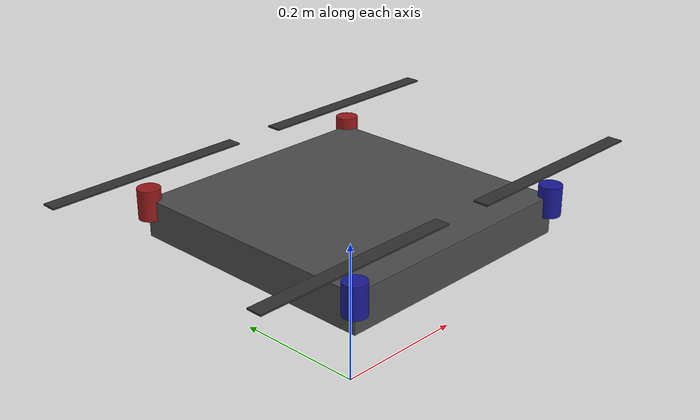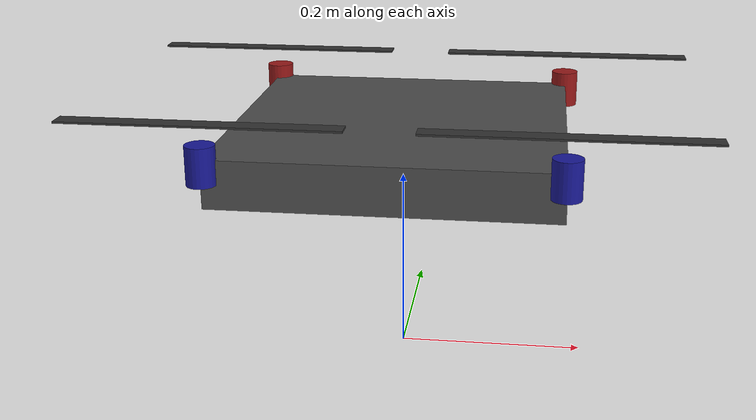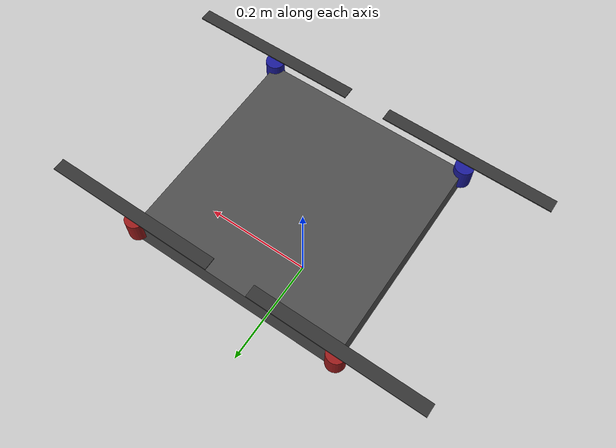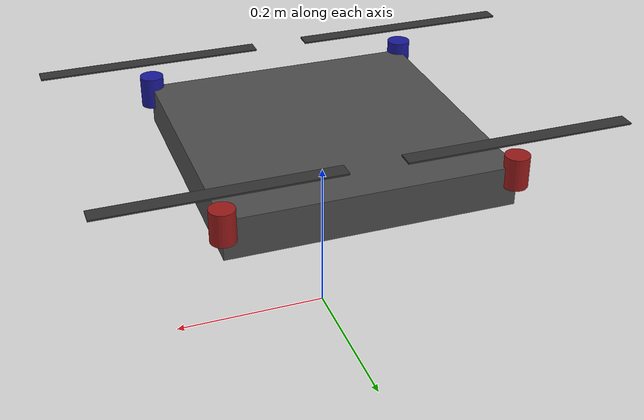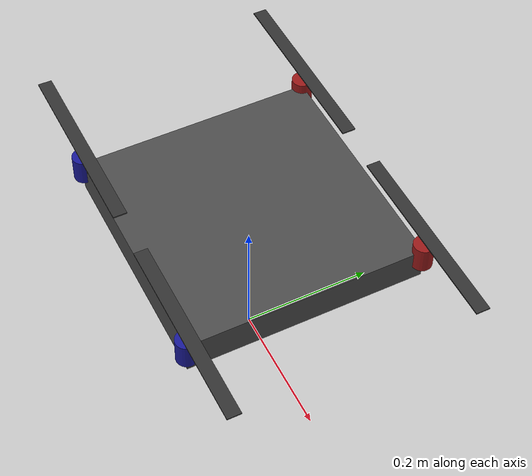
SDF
<?xml version="1.0" encoding="UTF-8"?>
<sdf version='1.9'>
  <model name='x500_lite'>
    <pose>0 0 .24 0 0 0</pose>
    <self_collide>false</self_collide>
    <static>false</static>

    <link name="base_link">
      <inertial>
        <mass>2.0</mass>
        <inertia>
          <ixx>0.02166666666666667</ixx>
          <ixy>0</ixy>
          <ixz>0</ixz>
          <iyy>0.02166666666666667</iyy>
          <iyz>0</iyz>
          <izz>0.04000000000000001</izz>
        </inertia>
      </inertial>
      <gravity>true</gravity>

      <!-- 简化外观：用 box 代替 22MB mesh -->
      <visual name="body_visual">
        <pose>0 0 0 0 0 0</pose>
        <geometry>
          <box><size>0.35 0.35 0.05</size></box>
        </geometry>
        <material>
          <ambient>0.2 0.2 0.2 1</ambient>
          <diffuse>0.3 0.3 0.3 1</diffuse>
        </material>
      </visual>
      <!-- 4 个电机座（小圆柱） -->
      <visual name="motor_mount_0">
        <pose>0.174 0.174 0.02 0 0 0</pose>
        <geometry><cylinder><radius>0.015</radius><length>0.04</length></cylinder></geometry>
        <material><ambient>0.5 0.1 0.1 1</ambient><diffuse>0.6 0.1 0.1 1</diffuse></material>
      </visual>
      <visual name="motor_mount_1">
        <pose>-0.174 0.174 0.02 0 0 0</pose>
        <geometry><cylinder><radius>0.015</radius><length>0.04</length></cylinder></geometry>
        <material><ambient>0.5 0.1 0.1 1</ambient><diffuse>0.6 0.1 0.1 1</diffuse></material>
      </visual>
      <visual name="motor_mount_2">
        <pose>0.174 -0.174 0.02 0 0 0</pose>
        <geometry><cylinder><radius>0.015</radius><length>0.04</length></cylinder></geometry>
        <material><ambient>0.1 0.1 0.5 1</ambient><diffuse>0.1 0.1 0.6 1</diffuse></material>
      </visual>
      <visual name="motor_mount_3">
        <pose>-0.174 -0.174 0.02 0 0 0</pose>
        <geometry><cylinder><radius>0.015</radius><length>0.04</length></cylinder></geometry>
        <material><ambient>0.1 0.1 0.5 1</ambient><diffuse>0.1 0.1 0.6 1</diffuse></material>
      </visual>

      <!-- Collision（与原版一致） -->
      <collision name="base_link_collision_0">
        <pose>0 0 .007 0 0 0</pose>
        <geometry>
          <box><size>0.35355339059327373 0.35355339059327373 0.05</size></box>
        </geometry>
        <surface>
          <contact><ode><min_depth>0.001</min_depth><max_vel>0</max_vel></ode></contact>
          <friction><ode /></friction>
        </surface>
      </collision>
      <collision name="base_link_collision_1">
        <pose>0 -0.098 -.123 -0.35 0 0</pose>
        <geometry><box><size>0.015 0.015 0.21</size></box></geometry>
        <surface>
          <contact><ode><min_depth>0.001</min_depth><max_vel>0</max_vel></ode></contact>
          <friction><ode /></friction>
        </surface>
      </collision>
      <collision name="base_link_collision_2">
        <pose>0 0.098 -.123 0.35 0 0</pose>
        <geometry><box><size>0.015 0.015 0.21</size></box></geometry>
        <surface>
          <contact><ode><min_depth>0.001</min_depth><max_vel>0</max_vel></ode></contact>
          <friction><ode /></friction>
        </surface>
      </collision>
      <collision name="base_link_collision_3">
        <pose>0 -0.132 -.2195 0 0 0</pose>
        <geometry><box><size>0.25 0.015 0.015</size></box></geometry>
        <surface>
          <contact><ode><min_depth>0.001</min_depth><max_vel>0</max_vel></ode></contact>
          <friction><ode /></friction>
        </surface>
      </collision>
      <collision name="base_link_collision_4">
        <pose>0 0.132 -.2195 0 0 0</pose>
        <geometry><box><size>0.25 0.015 0.015</size></box></geometry>
        <surface>
          <contact><ode><min_depth>0.001</min_depth><max_vel>0</max_vel></ode></contact>
          <friction><ode /></friction>
        </surface>
      </collision>

      <!-- 传感器（与原版完全一致） -->
      <sensor name="air_pressure_sensor" type="air_pressure">
        <gz_frame_id>base_link</gz_frame_id>
        <always_on>1</always_on>
        <update_rate>50</update_rate>
        <air_pressure>
          <pressure>
            <noise type="gaussian"><mean>0</mean><stddev>3</stddev></noise>
          </pressure>
        </air_pressure>
      </sensor>
      <sensor name="magnetometer_sensor" type="magnetometer">
        <gz_frame_id>base_link</gz_frame_id>
        <always_on>1</always_on>
        <update_rate>100</update_rate>
        <magnetometer>
          <x><noise type="gaussian"><stddev>0.0001</stddev></noise></x>
          <y><noise type="gaussian"><stddev>0.0001</stddev></noise></y>
          <z><noise type="gaussian"><stddev>0.0001</stddev></noise></z>
        </magnetometer>
      </sensor>
      <sensor name="imu_sensor" type="imu">
        <gz_frame_id>base_link</gz_frame_id>
        <always_on>1</always_on>
        <update_rate>250</update_rate>
        <imu>
          <angular_velocity>
            <x><noise type="gaussian"><mean>0.0</mean><stddev>0.0008726646</stddev></noise></x>
            <y><noise type="gaussian"><mean>0.0</mean><stddev>0.0008726646</stddev></noise></y>
            <z><noise type="gaussian"><mean>0.0</mean><stddev>0.0008726646</stddev></noise></z>
          </angular_velocity>
          <linear_acceleration>
            <x><noise type="gaussian"><mean>0.0</mean><stddev>0.00637</stddev></noise></x>
            <y><noise type="gaussian"><mean>0.0</mean><stddev>0.00637</stddev></noise></y>
            <z><noise type="gaussian"><mean>0.0</mean><stddev>0.00686</stddev></noise></z>
          </linear_acceleration>
        </imu>
      </sensor>
      <sensor name="navsat_sensor" type="navsat">
        <gz_frame_id>base_link</gz_frame_id>
        <always_on>1</always_on>
        <update_rate>30</update_rate>
      </sensor>
    </link>

    <!-- 4 个旋翼（简化 visual） -->
    <link name="rotor_0">
      <gravity>true</gravity>
      <self_collide>false</self_collide>
      <pose>0.174 -0.174 0.06 0 0 0</pose>
      <inertial>
        <mass>0.016076923076923075</mass>
        <inertia>
          <ixx>3.8464910483993325e-07</ixx>
          <iyy>2.6115851691700804e-05</iyy>
          <izz>2.649858234714004e-05</izz>
        </inertia>
      </inertial>
      <visual name="rotor_0_visual">
        <geometry><box><size>0.28 0.02 0.002</size></box></geometry>
        <material><ambient>0.1 0.1 0.1 1</ambient><diffuse>0.2 0.2 0.2 1</diffuse></material>
      </visual>
      <collision name="rotor_0_collision">
        <geometry><box><size>0.28 0.02 0.001</size></box></geometry>
        <surface>
          <contact><ode><min_depth>0.001</min_depth><max_vel>0</max_vel></ode></contact>
          <friction><ode /></friction>
        </surface>
      </collision>
    </link>
    <joint name="rotor_0_joint" type="revolute">
      <parent>base_link</parent>
      <child>rotor_0</child>
      <axis>
        <xyz>0 0 1</xyz>
        <limit><lower>-1e+16</lower><upper>1e+16</upper></limit>
        <dynamics><spring_reference>0</spring_reference><spring_stiffness>0</spring_stiffness></dynamics>
      </axis>
    </joint>

    <link name="rotor_1">
      <gravity>true</gravity>
      <self_collide>false</self_collide>
      <pose>-0.174 0.174 0.06 0 0 0</pose>
      <inertial>
        <mass>0.016076923076923075</mass>
        <inertia>
          <ixx>3.8464910483993325e-07</ixx>
          <iyy>2.6115851691700804e-05</iyy>
          <izz>2.649858234714004e-05</izz>
        </inertia>
      </inertial>
      <visual name="rotor_1_visual">
        <geometry><box><size>0.28 0.02 0.002</size></box></geometry>
        <material><ambient>0.1 0.1 0.1 1</ambient><diffuse>0.2 0.2 0.2 1</diffuse></material>
      </visual>
      <collision name="rotor_1_collision">
        <geometry><box><size>0.28 0.02 0.001</size></box></geometry>
        <surface>
          <contact><ode><min_depth>0.001</min_depth><max_vel>0</max_vel></ode></contact>
          <friction><ode /></friction>
        </surface>
      </collision>
    </link>
    <joint name="rotor_1_joint" type="revolute">
      <parent>base_link</parent>
      <child>rotor_1</child>
      <axis>
        <xyz>0 0 1</xyz>
        <limit><lower>-1e+16</lower><upper>1e+16</upper></limit>
        <dynamics><spring_reference>0</spring_reference><spring_stiffness>0</spring_stiffness></dynamics>
      </axis>
    </joint>

    <link name="rotor_2">
      <gravity>true</gravity>
      <self_collide>false</self_collide>
      <pose>0.174 0.174 0.06 0 0 0</pose>
      <inertial>
        <mass>0.016076923076923075</mass>
        <inertia>
          <ixx>3.8464910483993325e-07</ixx>
          <iyy>2.6115851691700804e-05</iyy>
          <izz>2.649858234714004e-05</izz>
        </inertia>
      </inertial>
      <visual name="rotor_2_visual">
        <geometry><box><size>0.28 0.02 0.002</size></box></geometry>
        <material><ambient>0.1 0.1 0.1 1</ambient><diffuse>0.2 0.2 0.2 1</diffuse></material>
      </visual>
      <collision name="rotor_2_collision">
        <geometry><box><size>0.28 0.02 0.001</size></box></geometry>
        <surface>
          <contact><ode><min_depth>0.001</min_depth><max_vel>0</max_vel></ode></contact>
          <friction><ode /></friction>
        </surface>
      </collision>
    </link>
    <joint name="rotor_2_joint" type="revolute">
      <parent>base_link</parent>
      <child>rotor_2</child>
      <axis>
        <xyz>0 0 1</xyz>
        <limit><lower>-1e+16</lower><upper>1e+16</upper></limit>
        <dynamics><spring_reference>0</spring_reference><spring_stiffness>0</spring_stiffness></dynamics>
      </axis>
    </joint>

    <link name="rotor_3">
      <gravity>true</gravity>
      <self_collide>false</self_collide>
      <pose>-0.174 -0.174 0.06 0 0 0</pose>
      <inertial>
        <mass>0.016076923076923075</mass>
        <inertia>
          <ixx>3.8464910483993325e-07</ixx>
          <iyy>2.6115851691700804e-05</iyy>
          <izz>2.649858234714004e-05</izz>
        </inertia>
      </inertial>
      <visual name="rotor_3_visual">
        <geometry><box><size>0.28 0.02 0.002</size></box></geometry>
        <material><ambient>0.1 0.1 0.1 1</ambient><diffuse>0.2 0.2 0.2 1</diffuse></material>
      </visual>
      <collision name="rotor_3_collision">
        <geometry><box><size>0.28 0.02 0.001</size></box></geometry>
        <surface>
          <contact><ode><min_depth>0.001</min_depth><max_vel>0</max_vel></ode></contact>
          <friction><ode /></friction>
        </surface>
      </collision>
    </link>
    <joint name="rotor_3_joint" type="revolute">
      <parent>base_link</parent>
      <child>rotor_3</child>
      <axis>
        <xyz>0 0 1</xyz>
        <limit><lower>-1e+16</lower><upper>1e+16</upper></limit>
        <dynamics><spring_reference>0</spring_reference><spring_stiffness>0</spring_stiffness></dynamics>
      </axis>
    </joint>

    <!-- 电机插件（与原版 x500 一致） -->
    <plugin filename="gz-sim-multicopter-motor-model-system"
      name="gz::sim::systems::MulticopterMotorModel">
      <jointName>rotor_0_joint</jointName>
      <linkName>rotor_0</linkName>
      <turningDirection>ccw</turningDirection>
      <timeConstantUp>0.0125</timeConstantUp>
      <timeConstantDown>0.025</timeConstantDown>
      <maxRotVelocity>1000.0</maxRotVelocity>
      <motorConstant>8.54858e-06</motorConstant>
      <momentConstant>0.016</momentConstant>
      <commandSubTopic>command/motor_speed</commandSubTopic>
      <motorNumber>0</motorNumber>
      <rotorDragCoefficient>8.06428e-05</rotorDragCoefficient>
      <rollingMomentCoefficient>1e-06</rollingMomentCoefficient>
      <rotorVelocitySlowdownSim>10</rotorVelocitySlowdownSim>
      <motorType>velocity</motorType>
    </plugin>
    <plugin filename="gz-sim-multicopter-motor-model-system"
      name="gz::sim::systems::MulticopterMotorModel">
      <jointName>rotor_1_joint</jointName>
      <linkName>rotor_1</linkName>
      <turningDirection>ccw</turningDirection>
      <timeConstantUp>0.0125</timeConstantUp>
      <timeConstantDown>0.025</timeConstantDown>
      <maxRotVelocity>1000.0</maxRotVelocity>
      <motorConstant>8.54858e-06</motorConstant>
      <momentConstant>0.016</momentConstant>
      <commandSubTopic>command/motor_speed</commandSubTopic>
      <motorNumber>1</motorNumber>
      <rotorDragCoefficient>8.06428e-05</rotorDragCoefficient>
      <rollingMomentCoefficient>1e-06</rollingMomentCoefficient>
      <rotorVelocitySlowdownSim>10</rotorVelocitySlowdownSim>
      <motorType>velocity</motorType>
    </plugin>
    <plugin filename="gz-sim-multicopter-motor-model-system"
      name="gz::sim::systems::MulticopterMotorModel">
      <jointName>rotor_2_joint</jointName>
      <linkName>rotor_2</linkName>
      <turningDirection>cw</turningDirection>
      <timeConstantUp>0.0125</timeConstantUp>
      <timeConstantDown>0.025</timeConstantDown>
      <maxRotVelocity>1000.0</maxRotVelocity>
      <motorConstant>8.54858e-06</motorConstant>
      <momentConstant>0.016</momentConstant>
      <commandSubTopic>command/motor_speed</commandSubTopic>
      <motorNumber>2</motorNumber>
      <rotorDragCoefficient>8.06428e-05</rotorDragCoefficient>
      <rollingMomentCoefficient>1e-06</rollingMomentCoefficient>
      <rotorVelocitySlowdownSim>10</rotorVelocitySlowdownSim>
      <motorType>velocity</motorType>
    </plugin>
    <plugin filename="gz-sim-multicopter-motor-model-system"
      name="gz::sim::systems::MulticopterMotorModel">
      <jointName>rotor_3_joint</jointName>
      <linkName>rotor_3</linkName>
      <turningDirection>cw</turningDirection>
      <timeConstantUp>0.0125</timeConstantUp>
      <timeConstantDown>0.025</timeConstantDown>
      <maxRotVelocity>1000.0</maxRotVelocity>
      <motorConstant>8.54858e-06</motorConstant>
      <momentConstant>0.016</momentConstant>
      <commandSubTopic>command/motor_speed</commandSubTopic>
      <motorNumber>3</motorNumber>
      <rotorDragCoefficient>8.06428e-05</rotorDragCoefficient>
      <rollingMomentCoefficient>1e-06</rollingMomentCoefficient>
      <rotorVelocitySlowdownSim>10</rotorVelocitySlowdownSim>
      <motorType>velocity</motorType>
    </plugin>
  </model>
</sdf>
